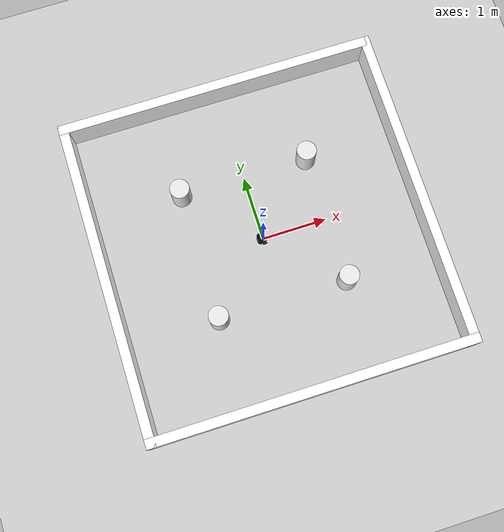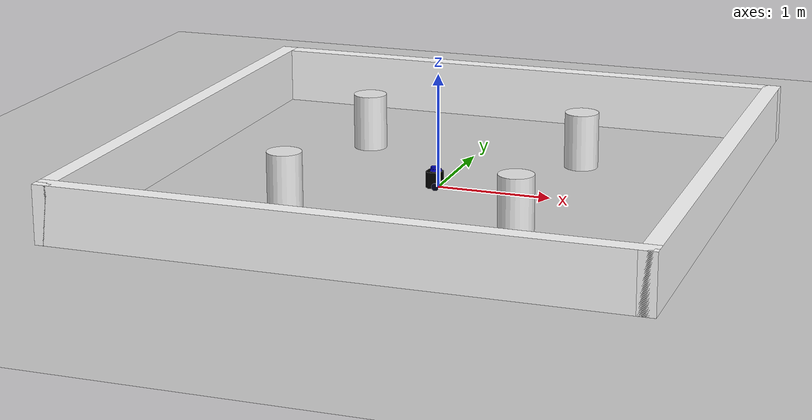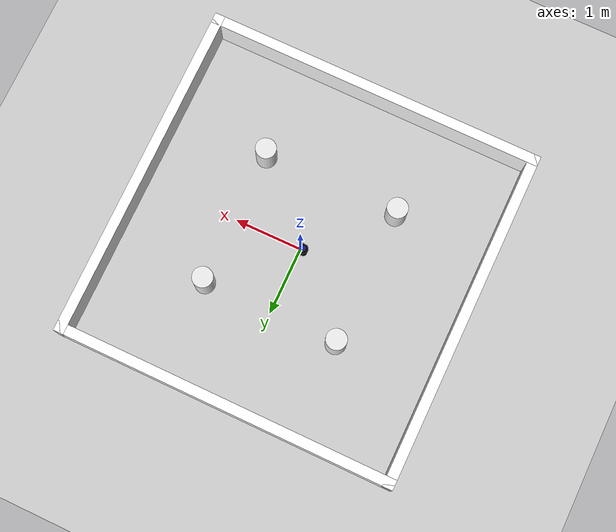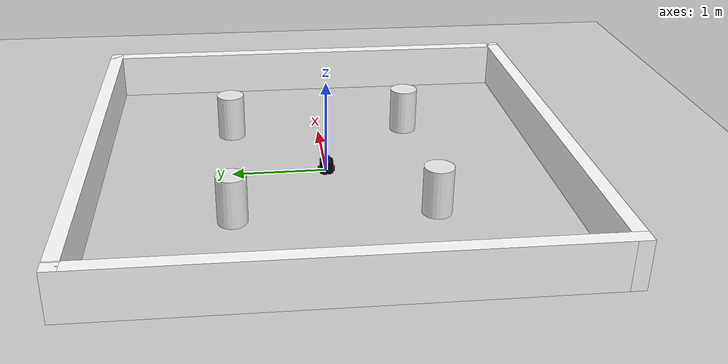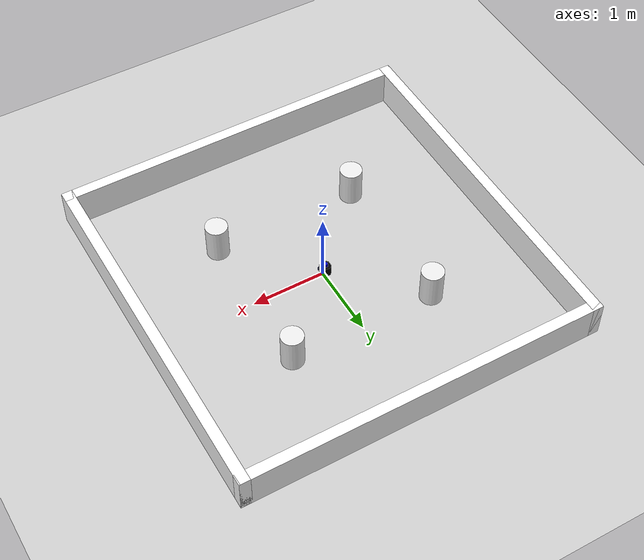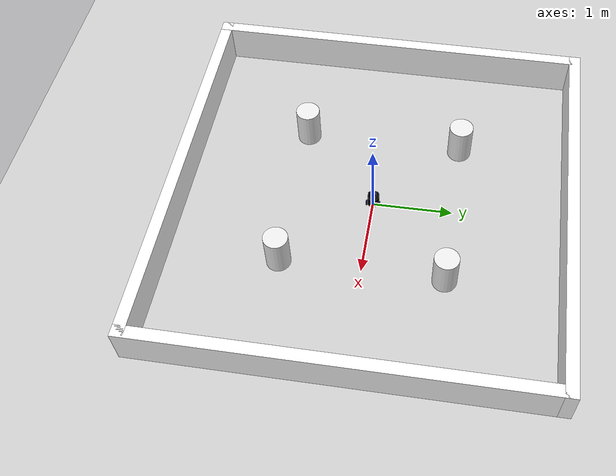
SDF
<?xml version="1.0"?>
<sdf version="1.6">
  <world name="default">

    <include>
      <uri>model://ground_plane</uri>
    </include>

    <include>
      <uri>model://sun</uri>
    </include>

    <scene>
      <shadows>false</shadows>
    </scene>

    <gui fullscreen='0'>
      <camera name='user_camera'>
        <pose frame=''>0.319654 -0.235002 9.29441 0 1.5138 0.009599</pose>
        <view_controller>orbit</view_controller>
        <projection_type>perspective</projection_type>
      </camera>
    </gui>

    <physics type="ode">
      <real_time_update_rate>2000.0</real_time_update_rate>
      <max_step_size>0.001</max_step_size>
      <real_time_factor>1</real_time_factor>
      <ode>
        <solver>
          <type>quick</type>
          <iters>150</iters>
          <precon_iters>0</precon_iters>
          <sor>1.400000</sor>
          <use_dynamic_moi_rescaling>1</use_dynamic_moi_rescaling>
        </solver>
        <constraints>
          <cfm>0.00001</cfm>
          <erp>0.2</erp>
          <contact_max_correcting_vel>2000.000000</contact_max_correcting_vel>
          <contact_surface_layer>0.01000</contact_surface_layer>
        </constraints>
      </ode>
    </physics>

    <model name="turtlebot3_dqn_world">
      <static>1</static>
      <include>
        <uri>model://turtlebot3_dqn_world</uri>
      </include>
    </model>

    <include>
      <uri>model://turtlebot3_dqn_world/obstacles</uri>
    </include>

    <include>
      <pose>0.0 0.0 0.0 0.0 0.0 0.0</pose>
      <uri>model://turtlebot3_burger</uri>
    </include>

  </world>
</sdf>

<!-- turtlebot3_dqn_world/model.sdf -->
<sdf version='1.8'>
  <model name='turtlebot3_square'>
    <pose>0 0 0 0 0 0</pose>
    <static>true</static>

    <link name='Wall_1'>
      <pose>2.425 0 0.25 0 0 1.5708</pose>
      <collision name='Wall_1_Collision'>
        <geometry>
          <box>
            <size>5 0.15 0.5</size>
          </box>
        </geometry>
      </collision>
      <visual name='Wall_1_Visual'>
        <pose>0 0 0 0 0 0</pose>
        <geometry>
          <box>
            <size>5 0.15 0.5</size>
          </box>
        </geometry>
        <material>
          <pbr>
            <metal>
              <albedo_map>textures/wood.png</albedo_map>
            </metal>
          </pbr>
          <ambient>1 1 1 1</ambient>
          <diffuse>1 1 1 1</diffuse>
          <specular>0.2 0.2 0.2 1</specular>
          <emissive>0 0 0 1</emissive>
        </material>
      </visual>
    </link>

    <link name='Wall_2'>
      <pose>0 2.425 0.25 0 0 0</pose>
      <collision name='Wall_2_Collision'>
        <geometry>
          <box>
            <size>5 0.15 0.5</size>
          </box>
        </geometry>
      </collision>
      <visual name='Wall_2_Visual'>
        <pose>0 0 0 0 0 0</pose>
        <geometry>
          <box>
            <size>5 0.15 0.5</size>
          </box>
        </geometry>
        <material>
          <pbr>
            <metal>
              <albedo_map>textures/wood.png</albedo_map>
            </metal>
          </pbr>
          <ambient>1 1 1 1</ambient>
          <diffuse>1 1 1 1</diffuse>
          <specular>0.2 0.2 0.2 1</specular>
          <emissive>0 0 0 1</emissive>
        </material>
      </visual>
    </link>

    <link name='Wall_3'>
      <pose>-2.425 0 0.25 0 0 1.5708</pose>
      <collision name='Wall_3_Collision'>
        <geometry>
          <box>
            <size>5 0.15 0.5</size>
          </box>
        </geometry>
      </collision>
      <visual name='Wall_3_Visual'>
        <pose>0 0 0 0 0 0</pose>
        <geometry>
          <box>
            <size>5 0.15 0.5</size>
          </box>
        </geometry>
        <material>
          <pbr>
            <metal>
              <albedo_map>textures/wood.png</albedo_map>
            </metal>
          </pbr>
          <ambient>1 1 1 1</ambient>
          <diffuse>1 1 1 1</diffuse>
          <specular>0.2 0.2 0.2 1</specular>
          <emissive>0 0 0 1</emissive>
        </material>
      </visual>
    </link>

    <link name='Wall_4'>
      <pose>0 -2.425 0.25 0 0 0</pose>
      <collision name='Wall_4_Collision'>
        <geometry>
          <box>
            <size>5 0.15 0.5</size>
          </box>
        </geometry>
      </collision>
      <visual name='Wall_4_Visual'>
        <pose>0 0 0 0 0 0</pose>
        <geometry>
          <box>
            <size>5 0.15 0.5</size>
          </box>
        </geometry>
        <material>
          <pbr>
            <metal>
              <albedo_map>textures/wood.png</albedo_map>
            </metal>
          </pbr>
          <ambient>1 1 1 1</ambient>
          <diffuse>1 1 1 1</diffuse>
          <specular>0.2 0.2 0.2 1</specular>
          <emissive>0 0 0 1</emissive>
        </material>
      </visual>
    </link>

  </model>
</sdf>

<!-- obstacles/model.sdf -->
<sdf version='1.8'>
  <model name='obstacles'>
    <pose>0 0 0 0 0 0</pose>
    <static>false</static>

    <link name='obstacle_1'>
      <pose>-1.0 -1.0 0.25 0 0 0</pose>
      <collision name='obstacle_1_collision'>
        <geometry>
          <cylinder>
            <radius>0.15</radius>
            <length>0.5</length>
          </cylinder>
        </geometry>
      </collision>
      <visual name='obstacle_1_visual'>
        <geometry>
          <cylinder>
            <radius>0.15</radius>
            <length>0.5</length>
          </cylinder>
        </geometry>
        <material>
          <script>
            <uri>file://media/materials/scripts/gazebo.material</uri>
            <name>Gazebo/White</name>
          </script>
        </material>
      </visual>
    </link>
    <link name='obstacle_2'>
      <pose>-1.0 1.0 0.25 0 0 0</pose>
      <collision name='obstacle_2_collision'>
        <geometry>
          <cylinder>
            <radius>0.15</radius>
            <length>0.5</length>
          </cylinder>
        </geometry>
      </collision>
      <visual name='obstacle_2_visual'>
        <geometry>
          <cylinder>
            <radius>0.15</radius>
            <length>0.5</length>
          </cylinder>
        </geometry>
        <material>
          <script>
            <uri>file://media/materials/scripts/gazebo.material</uri>
            <name>Gazebo/White</name>
          </script>
        </material>
      </visual>
    </link>
    <link name='obstacle_3'>
      <pose>1.0 -1.0 0.25 0 0 0</pose>
      <collision name='obstacle_3_collision'>
        <geometry>
          <cylinder>
            <radius>0.15</radius>
            <length>0.5</length>
          </cylinder>
        </geometry>
      </collision>
      <visual name='obstacle_3_visual'>
        <geometry>
          <cylinder>
            <radius>0.15</radius>
            <length>0.5</length>
          </cylinder>
        </geometry>
        <material>
          <script>
            <uri>file://media/materials/scripts/gazebo.material</uri>
            <name>Gazebo/White</name>
          </script>
        </material>
      </visual>
    </link>
    <link name='obstacle_4'>
      <pose>1.0 1.0 0.25 0 0 0</pose>
      <collision name='obstacle_4_collision'>
        <geometry>
          <cylinder>
            <radius>0.15</radius>
            <length>0.5</length>
          </cylinder>
        </geometry>
      </collision>
      <visual name='obstacle_4_visual'>
        <geometry>
          <cylinder>
            <radius>0.15</radius>
            <length>0.5</length>
          </cylinder>
        </geometry>
        <material>
          <script>
            <uri>file://media/materials/scripts/gazebo.material</uri>
            <name>Gazebo/White</name>
          </script>
        </material>
      </visual>
    </link>
  </model>
</sdf>

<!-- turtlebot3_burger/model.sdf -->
<sdf version="1.5">
  <model name="turtlebot3_burger">
    <pose>0.0 0.0 0.0 0.0 0.0 0.0</pose>

    <link name="base_footprint"/>

    <link name="base_link">

      <inertial>
        <pose>-0.032 0 0.070 0 0 0</pose>
        <inertia>
          <ixx>0.001</ixx>
          <ixy>0.000</ixy>
          <ixz>0.000</ixz>
          <iyy>0.001</iyy>
          <iyz>0.000</iyz>
          <izz>0.001</izz>
        </inertia>
        <mass>1.0</mass>
      </inertial>

      <collision name="base_collision">
        <pose>-0.032 0 0.070 0 0 0</pose>
        <geometry>
          <box>
            <size>0.140 0.140 0.140</size>
          </box>
        </geometry>
      </collision>

      <visual name="base_visual">
        <pose>-0.032 0 0 0 0 0</pose>
        <geometry>
          <mesh>
            <uri>model://turtlebot3_burger/meshes/burger_base.dae</uri>
            <scale>0.001 0.001 0.001</scale>
          </mesh>
        </geometry>
      </visual>
    </link>

    <link name="imu_link">
      <sensor name="tb3_imu" type="imu">
        <always_on>true</always_on>
        <update_rate>200</update_rate>
        <imu>
          <angular_velocity>
            <x>
              <noise type="gaussian">
                <mean>0.0</mean>
                <stddev>2e-4</stddev>
              </noise>
            </x>
            <y>
              <noise type="gaussian">
                <mean>0.0</mean>
                <stddev>2e-4</stddev>
              </noise>
            </y>
            <z>
              <noise type="gaussian">
                <mean>0.0</mean>
                <stddev>2e-4</stddev>
              </noise>
            </z>
          </angular_velocity>
          <linear_acceleration>
            <x>
              <noise type="gaussian">
                <mean>0.0</mean>
                <stddev>1.7e-2</stddev>
              </noise>
            </x>
            <y>
              <noise type="gaussian">
                <mean>0.0</mean>
                <stddev>1.7e-2</stddev>
              </noise>
            </y>
            <z>
              <noise type="gaussian">
                <mean>0.0</mean>
                <stddev>1.7e-2</stddev>
              </noise>
            </z>
          </linear_acceleration>
        </imu>
        <plugin name="turtlebot3_imu" filename="libgazebo_ros_imu_sensor.so">
          <ros>
            <remapping>~/out:=imu</remapping>
          </ros>
        </plugin>
      </sensor>
    </link>

    <link name="base_scan">
      <inertial>
        <pose>-0.020 0 0.161 0 0 0</pose>
        <inertia>
          <ixx>0.001</ixx>
          <ixy>0.000</ixy>
          <ixz>0.000</ixz>
          <iyy>0.001</iyy>
          <iyz>0.000</iyz>
          <izz>0.001</izz>
        </inertia>
        <mass>0.125</mass>
      </inertial>

      <collision name="lidar_sensor_collision">
        <pose>-0.020 0 0.161 0 0 0</pose>
        <geometry>
          <cylinder>
            <radius>0.0508</radius>
            <length>0.055</length>
          </cylinder>
        </geometry>
      </collision>

      <visual name="lidar_sensor_visual">
        <pose>-0.032 0 0.171 0 0 0</pose>
        <geometry>
          <mesh>
            <uri>model://turtlebot3_burger/meshes/lds.dae</uri>
            <scale>0.001 0.001 0.001</scale>
          </mesh>
        </geometry>
      </visual>

      <sensor name="hls_lfcd_lds" type="ray">
        <always_on>true</always_on>
        <visualize>true</visualize>
        <pose>-0.032 0 0.171 0 0 0</pose>
        <update_rate>5</update_rate>
        <ray>
          <scan>
            <horizontal>
              <samples>24</samples>
              <resolution>1.000000</resolution>
              <min_angle>0.000000</min_angle>
              <max_angle>6.280000</max_angle>
            </horizontal>
          </scan>
          <range>
            <min>0.120000</min>
            <max>3.5</max>
            <resolution>0.015000</resolution>
          </range>
          <noise>
            <type>gaussian</type>
            <mean>0.0</mean>
            <stddev>0.01</stddev>
          </noise>
        </ray>
        <plugin name="turtlebot3_laserscan" filename="libgazebo_ros_ray_sensor.so">
          <ros>
            <remapping>~/out:=scan</remapping>
          </ros>
          <output_type>sensor_msgs/LaserScan</output_type>
          <frame_name>base_scan</frame_name>
        </plugin>
      </sensor>
    </link>

    <link name="wheel_left_link">

      <inertial>
        <pose>0 0.08 0.023 -1.57 0 0</pose>
        <inertia>
          <ixx>0.001</ixx>
          <ixy>0.000</ixy>
          <ixz>0.000</ixz>
          <iyy>0.001</iyy>
          <iyz>0.000</iyz>
          <izz>0.001</izz>
        </inertia>
        <mass>0.1</mass>
      </inertial>

      <collision name="wheel_left_collision">
        <pose>0 0.08 0.023 -1.57 0 0</pose>
        <geometry>
          <cylinder>
            <radius>0.033</radius>
            <length>0.018</length>
          </cylinder>
        </geometry>
        <surface>
          <!-- This friction pamareter don't contain reliable data!! -->
          <friction>
            <ode>
              <mu>100000.0</mu>
              <mu2>100000.0</mu2>
              <fdir1>0 0 0</fdir1>
              <slip1>0.0</slip1>
              <slip2>0.0</slip2>
            </ode>
          </friction>
          <contact>
            <ode>
              <soft_cfm>0</soft_cfm>
              <soft_erp>0.2</soft_erp>
              <kp>1e+5</kp>
              <kd>1</kd>
              <max_vel>0.01</max_vel>
              <min_depth>0.001</min_depth>
            </ode>
          </contact>
        </surface>
      </collision>

      <visual name="wheel_left_visual">
        <pose>0 0.08 0.023 0 0 0</pose>
        <geometry>
          <mesh>
            <uri>model://turtlebot3_burger/meshes/tire.dae</uri>
            <scale>0.001 0.001 0.001</scale>
          </mesh>
        </geometry>
      </visual>
    </link>

    <link name="wheel_right_link">

      <inertial>
        <pose>0.0 -0.08 0.023 -1.57 0 0</pose>
        <inertia>
          <ixx>0.001</ixx>
          <ixy>0.000</ixy>
          <ixz>0.000</ixz>
          <iyy>0.001</iyy>
          <iyz>0.000</iyz>
          <izz>0.001</izz>
        </inertia>
        <mass>0.1</mass>
      </inertial>

      <collision name="wheel_right_collision">
        <pose>0.0 -0.08 0.023 -1.57 0 0</pose>
        <geometry>
          <cylinder>
            <radius>0.033</radius>
            <length>0.018</length>
          </cylinder>
        </geometry>
        <surface>
          <!-- This friction pamareter don't contain reliable data!! -->
          <friction>
            <ode>
              <mu>100000.0</mu>
              <mu2>100000.0</mu2>
              <fdir1>0 0 0</fdir1>
              <slip1>0.0</slip1>
              <slip2>0.0</slip2>
            </ode>
          </friction>
          <contact>
            <ode>
              <soft_cfm>0</soft_cfm>
              <soft_erp>0.2</soft_erp>
              <kp>1e+5</kp>
              <kd>1</kd>
              <max_vel>0.01</max_vel>
              <min_depth>0.001</min_depth>
            </ode>
          </contact>
        </surface>
      </collision>

      <visual name="wheel_right_visual">
        <pose>0.0 -0.08 0.023 0 0 0</pose>
        <geometry>
          <mesh>
            <uri>model://turtlebot3_burger/meshes/tire.dae</uri>
            <scale>0.001 0.001 0.001</scale>
          </mesh>
        </geometry>
      </visual>
    </link>

    <link name='caster_back_link'>
      <pose>-0.081 0 -0.004 0 0 0</pose>
      <inertial>
        <mass>0.001</mass>
        <inertia>
          <ixx>0.00001</ixx>
          <ixy>0.000</ixy>
          <ixz>0.000</ixz>
          <iyy>0.00001</iyy>
          <iyz>0.000</iyz>
          <izz>0.00001</izz>
        </inertia>
      </inertial>
      <collision name='collision'>
        <geometry>
          <sphere>
            <radius>0.005000</radius>
          </sphere>
        </geometry>
        <surface>
          <contact>
            <ode>
              <soft_cfm>0</soft_cfm>
              <soft_erp>0.2</soft_erp>
              <kp>1e+5</kp>
              <kd>1</kd>
              <max_vel>0.01</max_vel>
              <min_depth>0.001</min_depth>
            </ode>
          </contact>
        </surface>
      </collision>
    </link>

    <joint name="base_joint" type="fixed">
      <parent>base_footprint</parent>
      <child>base_link</child>
      <pose>0.0 0.0 0.010 0 0 0</pose>
    </joint>

    <joint name="wheel_left_joint" type="revolute">
      <parent>base_link</parent>
      <child>wheel_left_link</child>
      <pose>0.0 0.08 0.023 -1.57 0 0</pose>
      <axis>
        <xyz>0 0 1</xyz>
      </axis>
    </joint>

    <joint name="wheel_right_joint" type="revolute">
      <parent>base_link</parent>
      <child>wheel_right_link</child>
      <pose>0.0 -0.08 0.023 -1.57 0 0</pose>
      <axis>
        <xyz>0 0 1</xyz>
      </axis>
    </joint>

    <joint name='caster_back_joint' type='ball'>
      <parent>base_link</parent>
      <child>caster_back_link</child>
    </joint>

    <joint name="imu_joint" type="fixed">
      <parent>base_link</parent>
      <child>imu_link</child>
      <pose>-0.032 0 0.068 0 0 0</pose>
      <axis>
        <xyz>0 0 1</xyz>
      </axis>
    </joint>

    <joint name="lidar_joint" type="fixed">
      <parent>base_link</parent>
      <child>base_scan</child>
      <pose>-0.032 0 0.171 0 0 0</pose>
      <axis>
        <xyz>0 0 1</xyz>
      </axis>
    </joint>

    <plugin name="turtlebot3_diff_drive" filename="libgazebo_ros_diff_drive.so">

      <ros>
      </ros>

      <update_rate>30</update_rate>

      <!-- wheels -->
      <left_joint>wheel_left_joint</left_joint>
      <right_joint>wheel_right_joint</right_joint>

      <!-- kinematics -->
      <wheel_separation>0.160</wheel_separation>
      <wheel_diameter>0.066</wheel_diameter>

      <!-- limits -->
      <max_wheel_torque>20</max_wheel_torque>
      <max_wheel_acceleration>1.0</max_wheel_acceleration>

      <command_topic>cmd_vel</command_topic>

      <!-- output -->
      <publish_odom>true</publish_odom>
      <publish_odom_tf>true</publish_odom_tf>
      <publish_wheel_tf>false</publish_wheel_tf>

      <odometry_topic>odom</odometry_topic>
      <odometry_frame>odom</odometry_frame>
      <robot_base_frame>base_footprint</robot_base_frame>

    </plugin>

    <plugin name="turtlebot3_joint_state" filename="libgazebo_ros_joint_state_publisher.so">
      <ros>
        <remapping>~/out:=joint_states</remapping>
      </ros>
      <update_rate>30</update_rate>
      <joint_name>wheel_left_joint</joint_name>
      <joint_name>wheel_right_joint</joint_name>
    </plugin>
  </model>
</sdf>
